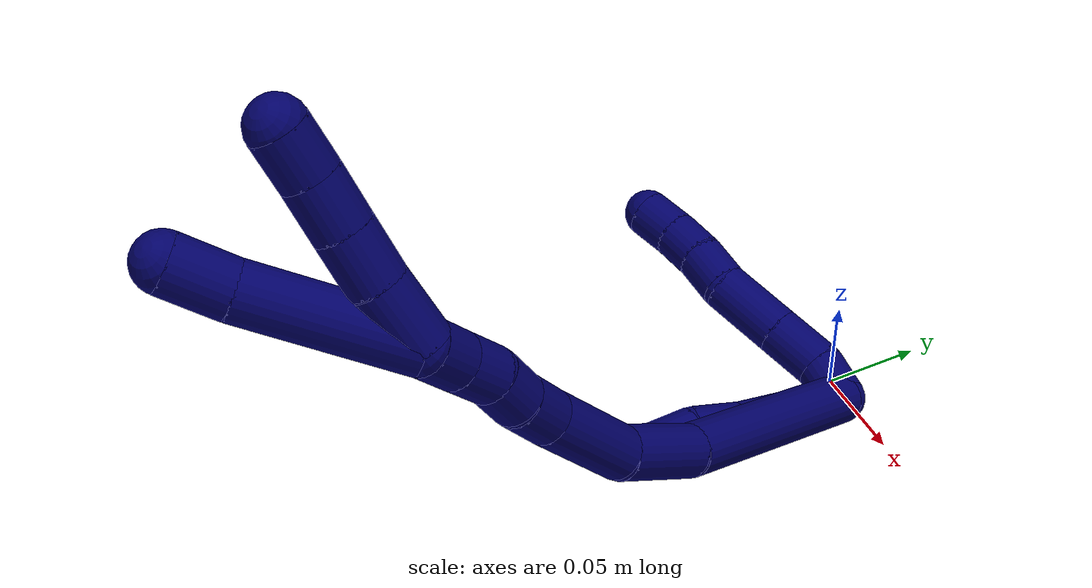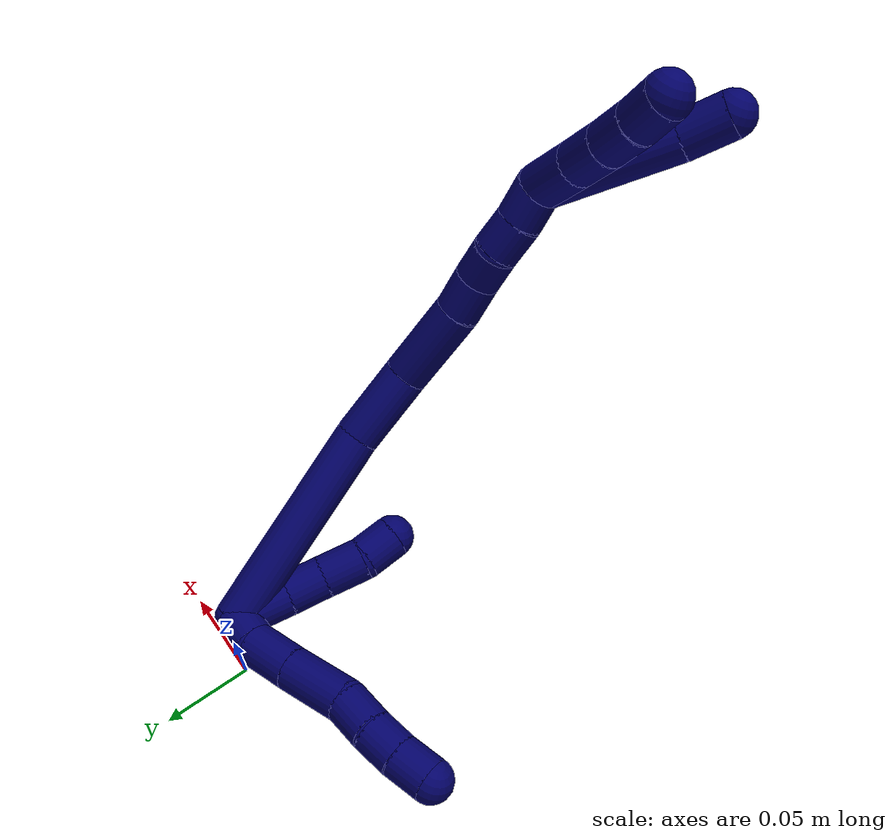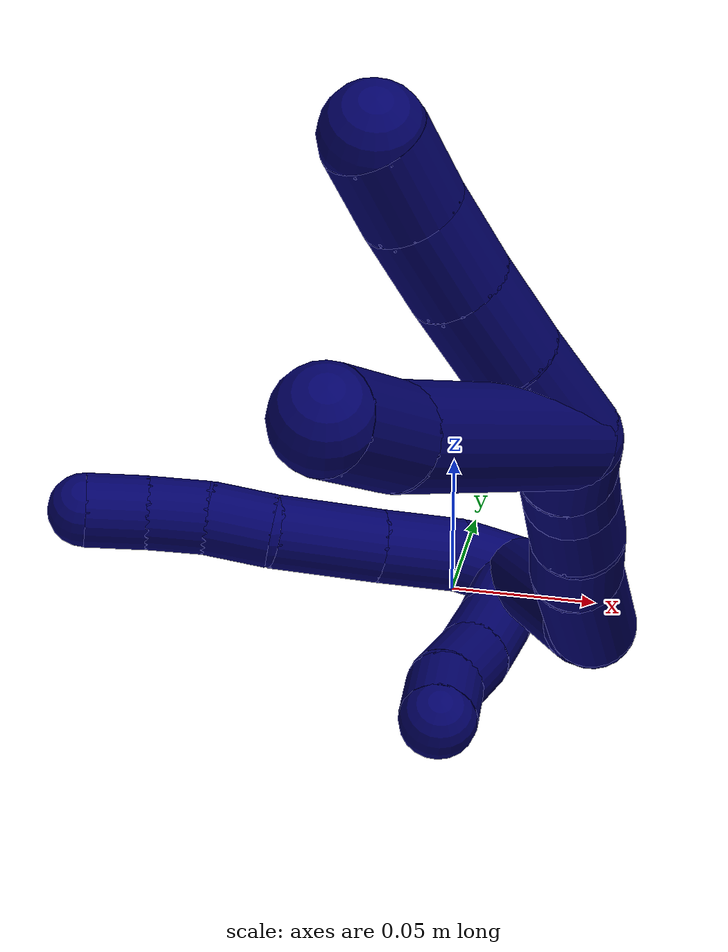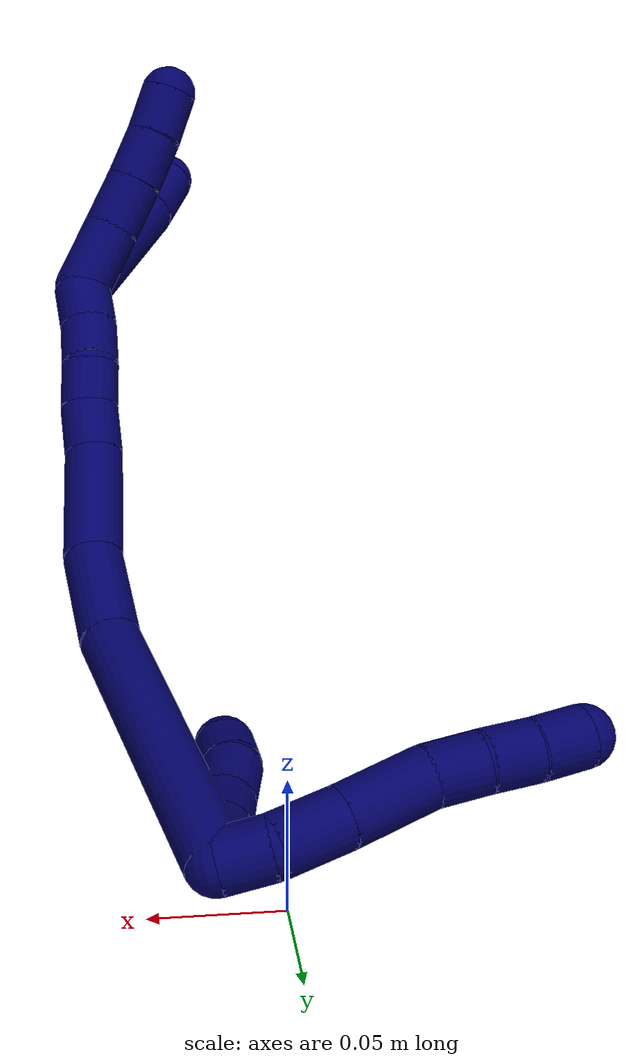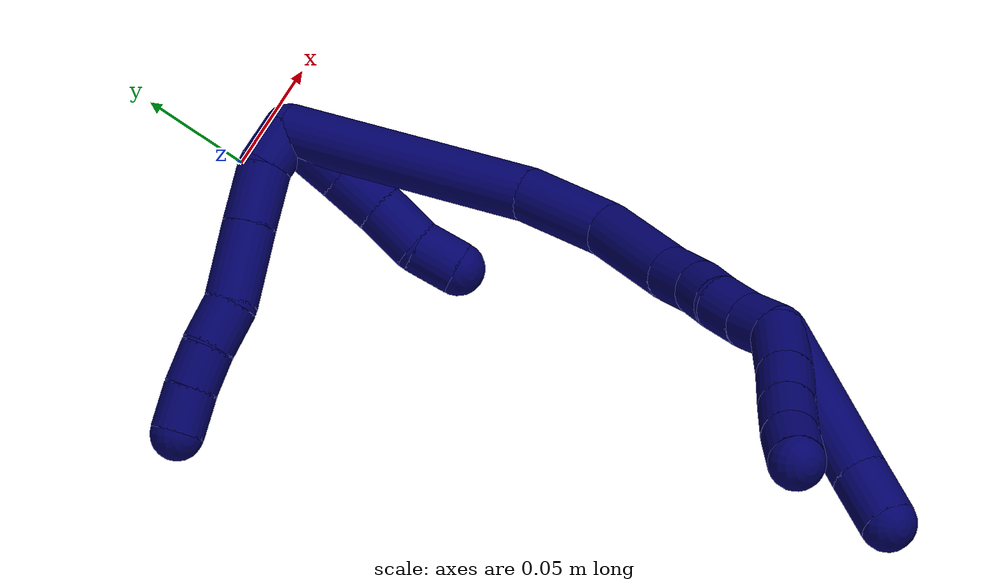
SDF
<sdf version="1.7">
 <world name="default">
  <model name="7">
   <static>0</static>
   <link name="7">
    <collision name="collision-cylinder-e_1_2_8">
     <pose>-0.008521 0.005864 0.00054 -1.47896 -0.966099 0.89245</pose>
     <geometry><cylinder><radius>0.0125</radius><length>0.020715</length></cylinder></geometry>
     <surface>
      <friction><ode><mu>1.16</mu><mu2>1.16</mu2><slip1>0</slip1><slip2>0</slip2></ode></friction>
      <contact><ode><kp>1e+06</kp><kd>1</kd><max_vel>0</max_vel><min_depth>0.001</min_depth></ode></contact>
     </surface>
    </collision>
    <visual name="visual-cylinder-e_1_2_8">
     <pose>-0.008521 0.005864 0.00054 -1.47896 -0.966099 0.89245</pose>
     <geometry><cylinder><radius>0.0125</radius><length>0.020715</length></cylinder></geometry>
     <material><ambient>0.003922 0 0.403922 1</ambient></material>
    </visual>
    <collision name="collision-cylinder-e_2_8_9">
     <pose>-0.030372 0.01589 0.003833 -0.986514 -1.21253 0.713585</pose>
     <geometry><cylinder><radius>0.0125</radius><length>0.028468</length></cylinder></geometry>
     <surface>
      <friction><ode><mu>1.16</mu><mu2>1.16</mu2><slip1>0</slip1><slip2>0</slip2></ode></friction>
      <contact><ode><kp>1e+06</kp><kd>1</kd><max_vel>0</max_vel><min_depth>0.001</min_depth></ode></contact>
     </surface>
    </collision>
    <visual name="visual-cylinder-e_2_8_9">
     <pose>-0.030372 0.01589 0.003833 -0.986514 -1.21253 0.713585</pose>
     <geometry><cylinder><radius>0.0125</radius><length>0.028468</length></cylinder></geometry>
     <material><ambient>0.003922 0 0.403922 1</ambient></material>
    </visual>
    <collision name="collision-cylinder-e_3_9_10">
     <pose>-0.061037 0.025421 0.010991 -0.883624 -1.18981 0.619532</pose>
     <geometry><cylinder><radius>0.0125</radius><length>0.037347</length></cylinder></geometry>
     <surface>
      <friction><ode><mu>1.16</mu><mu2>1.16</mu2><slip1>0</slip1><slip2>0</slip2></ode></friction>
      <contact><ode><kp>1e+06</kp><kd>1</kd><max_vel>0</max_vel><min_depth>0.001</min_depth></ode></contact>
     </surface>
    </collision>
    <visual name="visual-cylinder-e_3_9_10">
     <pose>-0.061037 0.025421 0.010991 -0.883624 -1.18981 0.619532</pose>
     <geometry><cylinder><radius>0.0125</radius><length>0.037347</length></cylinder></geometry>
     <material><ambient>0.003922 0 0.403922 1</ambient></material>
    </visual>
    <collision name="collision-cylinder-e_4_10_11">
     <pose>-0.088141 0.035969 0.016019 -1.45094 -1.08024 0.977397</pose>
     <geometry><cylinder><radius>0.0125</radius><length>0.02215</length></cylinder></geometry>
     <surface>
      <friction><ode><mu>1.16</mu><mu2>1.16</mu2><slip1>0</slip1><slip2>0</slip2></ode></friction>
      <contact><ode><kp>1e+06</kp><kd>1</kd><max_vel>0</max_vel><min_depth>0.001</min_depth></ode></contact>
     </surface>
    </collision>
    <visual name="visual-cylinder-e_4_10_11">
     <pose>-0.088141 0.035969 0.016019 -1.45094 -1.08024 0.977397</pose>
     <geometry><cylinder><radius>0.0125</radius><length>0.02215</length></cylinder></geometry>
     <material><ambient>0.003922 0 0.403922 1</ambient></material>
    </visual>
    <collision name="collision-cylinder-e_5_11_12">
     <pose>-0.107355 0.04474 0.01693 -1.49107 -1.2064 1.13295</pose>
     <geometry><cylinder><radius>0.0125</radius><length>0.020218</length></cylinder></geometry>
     <surface>
      <friction><ode><mu>1.16</mu><mu2>1.16</mu2><slip1>0</slip1><slip2>0</slip2></ode></friction>
      <contact><ode><kp>1e+06</kp><kd>1</kd><max_vel>0</max_vel><min_depth>0.001</min_depth></ode></contact>
     </surface>
    </collision>
    <visual name="visual-cylinder-e_5_11_12">
     <pose>-0.107355 0.04474 0.01693 -1.49107 -1.2064 1.13295</pose>
     <geometry><cylinder><radius>0.0125</radius><length>0.020218</length></cylinder></geometry>
     <material><ambient>0.003922 0 0.403922 1</ambient></material>
    </visual>
    <collision name="collision-cylinder-e_6_12_6">
     <pose>-0.126883 0.051307 0.018108 -1.27981 -1.27202 1.00511</pose>
     <geometry><cylinder><radius>0.0125</radius><length>0.021102</length></cylinder></geometry>
     <surface>
      <friction><ode><mu>1.16</mu><mu2>1.16</mu2><slip1>0</slip1><slip2>0</slip2></ode></friction>
      <contact><ode><kp>1e+06</kp><kd>1</kd><max_vel>0</max_vel><min_depth>0.001</min_depth></ode></contact>
     </surface>
    </collision>
    <visual name="visual-cylinder-e_6_12_6">
     <pose>-0.126883 0.051307 0.018108 -1.27981 -1.27202 1.00511</pose>
     <geometry><cylinder><radius>0.0125</radius><length>0.021102</length></cylinder></geometry>
     <material><ambient>0.003922 0 0.403922 1</ambient></material>
    </visual>
    <collision name="collision-cylinder-e_1_2_13">
     <pose>-0.008937 -0.010971 0.006171 1.05844 -0.617403 -0.368788</pose>
     <geometry><cylinder><radius>0.0125</radius><length>0.030875</length></cylinder></geometry>
     <surface>
      <friction><ode><mu>1.16</mu><mu2>1.16</mu2><slip1>0</slip1><slip2>0</slip2></ode></friction>
      <contact><ode><kp>1e+06</kp><kd>1</kd><max_vel>0</max_vel><min_depth>0.001</min_depth></ode></contact>
     </surface>
    </collision>
    <visual name="visual-cylinder-e_1_2_13">
     <pose>-0.008937 -0.010971 0.006171 1.05844 -0.617403 -0.368788</pose>
     <geometry><cylinder><radius>0.0125</radius><length>0.030875</length></cylinder></geometry>
     <material><ambient>0.003922 0 0.403922 1</ambient></material>
    </visual>
    <collision name="collision-cylinder-e_2_13_14">
     <pose>-0.02464 -0.029504 0.018001 0.928319 -0.621605 -0.318894</pose>
     <geometry><cylinder><radius>0.0125</radius><length>0.023236</length></cylinder></geometry>
     <surface>
      <friction><ode><mu>1.16</mu><mu2>1.16</mu2><slip1>0</slip1><slip2>0</slip2></ode></friction>
      <contact><ode><kp>1e+06</kp><kd>1</kd><max_vel>0</max_vel><min_depth>0.001</min_depth></ode></contact>
     </surface>
    </collision>
    <visual name="visual-cylinder-e_2_13_14">
     <pose>-0.02464 -0.029504 0.018001 0.928319 -0.621605 -0.318894</pose>
     <geometry><cylinder><radius>0.0125</radius><length>0.023236</length></cylinder></geometry>
     <material><ambient>0.003922 0 0.403922 1</ambient></material>
    </visual>
    <collision name="collision-cylinder-e_3_14_15">
     <pose>-0.039003 -0.04396 0.030734 0.772499 -0.655642 -0.274872</pose>
     <geometry><cylinder><radius>0.0125</radius><length>0.024924</length></cylinder></geometry>
     <surface>
      <friction><ode><mu>1.16</mu><mu2>1.16</mu2><slip1>0</slip1><slip2>0</slip2></ode></friction>
      <contact><ode><kp>1e+06</kp><kd>1</kd><max_vel>0</max_vel><min_depth>0.001</min_depth></ode></contact>
     </surface>
    </collision>
    <visual name="visual-cylinder-e_3_14_15">
     <pose>-0.039003 -0.04396 0.030734 0.772499 -0.655642 -0.274872</pose>
     <geometry><cylinder><radius>0.0125</radius><length>0.024924</length></cylinder></geometry>
     <material><ambient>0.003922 0 0.403922 1</ambient></material>
    </visual>
    <collision name="collision-cylinder-e_4_15_5">
     <pose>-0.050839 -0.058662 0.043372 0.951668 -0.416269 -0.216814</pose>
     <geometry><cylinder><radius>0.0125</radius><length>0.020965</length></cylinder></geometry>
     <surface>
      <friction><ode><mu>1.16</mu><mu2>1.16</mu2><slip1>0</slip1><slip2>0</slip2></ode></friction>
      <contact><ode><kp>1e+06</kp><kd>1</kd><max_vel>0</max_vel><min_depth>0.001</min_depth></ode></contact>
     </surface>
    </collision>
    <visual name="visual-cylinder-e_4_15_5">
     <pose>-0.050839 -0.058662 0.043372 0.951668 -0.416269 -0.216814</pose>
     <geometry><cylinder><radius>0.0125</radius><length>0.020965</length></cylinder></geometry>
     <material><ambient>0.003922 0 0.403922 1</ambient></material>
    </visual>
    <collision name="collision-cylinder-e_1_2_16">
     <pose>-0.007189 -0.035569 0.049157 0.626368 -0.117934 -0.038231</pose>
     <geometry><cylinder><radius>0.0125</radius><length>0.122201</length></cylinder></geometry>
     <surface>
      <friction><ode><mu>1.16</mu><mu2>1.16</mu2><slip1>0</slip1><slip2>0</slip2></ode></friction>
      <contact><ode><kp>1e+06</kp><kd>1</kd><max_vel>0</max_vel><min_depth>0.001</min_depth></ode></contact>
     </surface>
    </collision>
    <visual name="visual-cylinder-e_1_2_16">
     <pose>-0.007189 -0.035569 0.049157 0.626368 -0.117934 -0.038231</pose>
     <geometry><cylinder><radius>0.0125</radius><length>0.122201</length></cylinder></geometry>
     <material><ambient>0.003922 0 0.403922 1</ambient></material>
    </visual>
    <collision name="collision-cylinder-e_2_16_17">
     <pose>-0.019332 -0.080786 0.118149 0.452743 -0.220922 -0.051079</pose>
     <geometry><cylinder><radius>0.0125</radius><length>0.045212</length></cylinder></geometry>
     <surface>
      <friction><ode><mu>1.16</mu><mu2>1.16</mu2><slip1>0</slip1><slip2>0</slip2></ode></friction>
      <contact><ode><kp>1e+06</kp><kd>1</kd><max_vel>0</max_vel><min_depth>0.001</min_depth></ode></contact>
     </surface>
    </collision>
    <visual name="visual-cylinder-e_2_16_17">
     <pose>-0.019332 -0.080786 0.118149 0.452743 -0.220922 -0.051079</pose>
     <geometry><cylinder><radius>0.0125</radius><length>0.045212</length></cylinder></geometry>
     <material><ambient>0.003922 0 0.403922 1</ambient></material>
    </visual>
    <collision name="collision-cylinder-e_3_17_18">
     <pose>-0.030611 -0.093115 0.161768 0.112259 -0.258391 -0.0146</pose>
     <geometry><cylinder><radius>0.0125</radius><length>0.049512</length></cylinder></geometry>
     <surface>
      <friction><ode><mu>1.16</mu><mu2>1.16</mu2><slip1>0</slip1><slip2>0</slip2></ode></friction>
      <contact><ode><kp>1e+06</kp><kd>1</kd><max_vel>0</max_vel><min_depth>0.001</min_depth></ode></contact>
     </surface>
    </collision>
    <visual name="visual-cylinder-e_3_17_18">
     <pose>-0.030611 -0.093115 0.161768 0.112259 -0.258391 -0.0146</pose>
     <geometry><cylinder><radius>0.0125</radius><length>0.049512</length></cylinder></geometry>
     <material><ambient>0.003922 0 0.403922 1</ambient></material>
    </visual>
    <collision name="collision-cylinder-e_4_18_19">
     <pose>-0.038454 -0.096688 0.196555 0.080834 -0.136574 -0.005531</pose>
     <geometry><cylinder><radius>0.0125</radius><length>0.022286</length></cylinder></geometry>
     <surface>
      <friction><ode><mu>1.16</mu><mu2>1.16</mu2><slip1>0</slip1><slip2>0</slip2></ode></friction>
      <contact><ode><kp>1e+06</kp><kd>1</kd><max_vel>0</max_vel><min_depth>0.001</min_depth></ode></contact>
     </surface>
    </collision>
    <visual name="visual-cylinder-e_4_18_19">
     <pose>-0.038454 -0.096688 0.196555 0.080834 -0.136574 -0.005531</pose>
     <geometry><cylinder><radius>0.0125</radius><length>0.022286</length></cylinder></geometry>
     <material><ambient>0.003922 0 0.403922 1</ambient></material>
    </visual>
    <collision name="collision-cylinder-e_5_19_20">
     <pose>-0.041799 -0.096837 0.217369 -0.0755 -0.183595 0.006954</pose>
     <geometry><cylinder><radius>0.0125</radius><length>0.020015</length></cylinder></geometry>
     <surface>
      <friction><ode><mu>1.16</mu><mu2>1.16</mu2><slip1>0</slip1><slip2>0</slip2></ode></friction>
      <contact><ode><kp>1e+06</kp><kd>1</kd><max_vel>0</max_vel><min_depth>0.001</min_depth></ode></contact>
     </surface>
    </collision>
    <visual name="visual-cylinder-e_5_19_20">
     <pose>-0.041799 -0.096837 0.217369 -0.0755 -0.183595 0.006954</pose>
     <geometry><cylinder><radius>0.0125</radius><length>0.020015</length></cylinder></geometry>
     <material><ambient>0.003922 0 0.403922 1</ambient></material>
    </visual>
    <collision name="collision-cylinder-e_6_20_21">
     <pose>-0.045965 -0.097678 0.236934 0.16087 -0.232441 -0.018821</pose>
     <geometry><cylinder><radius>0.0125</radius><length>0.020308</length></cylinder></geometry>
     <surface>
      <friction><ode><mu>1.16</mu><mu2>1.16</mu2><slip1>0</slip1><slip2>0</slip2></ode></friction>
      <contact><ode><kp>1e+06</kp><kd>1</kd><max_vel>0</max_vel><min_depth>0.001</min_depth></ode></contact>
     </surface>
    </collision>
    <visual name="visual-cylinder-e_6_20_21">
     <pose>-0.045965 -0.097678 0.236934 0.16087 -0.232441 -0.018821</pose>
     <geometry><cylinder><radius>0.0125</radius><length>0.020308</length></cylinder></geometry>
     <material><ambient>0.003922 0 0.403922 1</ambient></material>
    </visual>
    <collision name="collision-cylinder-e_7_21_1">
     <pose>-0.049492 -0.100818 0.25673 0.153912 -0.11644 -0.008989</pose>
     <geometry><cylinder><radius>0.0125</radius><length>0.020465</length></cylinder></geometry>
     <surface>
      <friction><ode><mu>1.16</mu><mu2>1.16</mu2><slip1>0</slip1><slip2>0</slip2></ode></friction>
      <contact><ode><kp>1e+06</kp><kd>1</kd><max_vel>0</max_vel><min_depth>0.001</min_depth></ode></contact>
     </surface>
    </collision>
    <visual name="visual-cylinder-e_7_21_1">
     <pose>-0.049492 -0.100818 0.25673 0.153912 -0.11644 -0.008989</pose>
     <geometry><cylinder><radius>0.0125</radius><length>0.020465</length></cylinder></geometry>
     <material><ambient>0.003922 0 0.403922 1</ambient></material>
    </visual>
    <collision name="collision-cylinder-e_1_1_22">
     <pose>-0.07707 -0.110395 0.290997 0.31966 -0.802223 -0.136523</pose>
     <geometry><cylinder><radius>0.0125</radius><length>0.073415</length></cylinder></geometry>
     <surface>
      <friction><ode><mu>1.16</mu><mu2>1.16</mu2><slip1>0</slip1><slip2>0</slip2></ode></friction>
      <contact><ode><kp>1e+06</kp><kd>1</kd><max_vel>0</max_vel><min_depth>0.001</min_depth></ode></contact>
     </surface>
    </collision>
    <visual name="visual-cylinder-e_1_1_22">
     <pose>-0.07707 -0.110395 0.290997 0.31966 -0.802223 -0.136523</pose>
     <geometry><cylinder><radius>0.0125</radius><length>0.073415</length></cylinder></geometry>
     <material><ambient>0.003922 0 0.403922 1</ambient></material>
    </visual>
    <collision name="collision-cylinder-e_2_22_4">
     <pose>-0.112142 -0.120223 0.325121 0.180801 -0.711777 -0.067365</pose>
     <geometry><cylinder><radius>0.0125</radius><length>0.026585</length></cylinder></geometry>
     <surface>
      <friction><ode><mu>1.16</mu><mu2>1.16</mu2><slip1>0</slip1><slip2>0</slip2></ode></friction>
      <contact><ode><kp>1e+06</kp><kd>1</kd><max_vel>0</max_vel><min_depth>0.001</min_depth></ode></contact>
     </surface>
    </collision>
    <visual name="visual-cylinder-e_2_22_4">
     <pose>-0.112142 -0.120223 0.325121 0.180801 -0.711777 -0.067365</pose>
     <geometry><cylinder><radius>0.0125</radius><length>0.026585</length></cylinder></geometry>
     <material><ambient>0.003922 0 0.403922 1</ambient></material>
    </visual>
    <collision name="collision-cylinder-e_1_1_23">
     <pose>-0.057697 -0.097007 0.27911 -0.410529 -0.480699 0.101964</pose>
     <geometry><cylinder><radius>0.0125</radius><length>0.030348</length></cylinder></geometry>
     <surface>
      <friction><ode><mu>1.16</mu><mu2>1.16</mu2><slip1>0</slip1><slip2>0</slip2></ode></friction>
      <contact><ode><kp>1e+06</kp><kd>1</kd><max_vel>0</max_vel><min_depth>0.001</min_depth></ode></contact>
     </surface>
    </collision>
    <visual name="visual-cylinder-e_1_1_23">
     <pose>-0.057697 -0.097007 0.27911 -0.410529 -0.480699 0.101964</pose>
     <geometry><cylinder><radius>0.0125</radius><length>0.030348</length></cylinder></geometry>
     <material><ambient>0.003922 0 0.403922 1</ambient></material>
    </visual>
    <collision name="collision-cylinder-e_2_23_24">
     <pose>-0.07 -0.086603 0.301212 -0.47602 -0.448426 0.11054</pose>
     <geometry><cylinder><radius>0.0125</radius><length>0.024386</length></cylinder></geometry>
     <surface>
      <friction><ode><mu>1.16</mu><mu2>1.16</mu2><slip1>0</slip1><slip2>0</slip2></ode></friction>
      <contact><ode><kp>1e+06</kp><kd>1</kd><max_vel>0</max_vel><min_depth>0.001</min_depth></ode></contact>
     </surface>
    </collision>
    <visual name="visual-cylinder-e_2_23_24">
     <pose>-0.07 -0.086603 0.301212 -0.47602 -0.448426 0.11054</pose>
     <geometry><cylinder><radius>0.0125</radius><length>0.024386</length></cylinder></geometry>
     <material><ambient>0.003922 0 0.403922 1</ambient></material>
    </visual>
    <collision name="collision-cylinder-e_3_24_25">
     <pose>-0.079949 -0.076851 0.320571 -0.45696 -0.411291 0.096937</pose>
     <geometry><cylinder><radius>0.0125</radius><length>0.023325</length></cylinder></geometry>
     <surface>
      <friction><ode><mu>1.16</mu><mu2>1.16</mu2><slip1>0</slip1><slip2>0</slip2></ode></friction>
      <contact><ode><kp>1e+06</kp><kd>1</kd><max_vel>0</max_vel><min_depth>0.001</min_depth></ode></contact>
     </surface>
    </collision>
    <visual name="visual-cylinder-e_3_24_25">
     <pose>-0.079949 -0.076851 0.320571 -0.45696 -0.411291 0.096937</pose>
     <geometry><cylinder><radius>0.0125</radius><length>0.023325</length></cylinder></geometry>
     <material><ambient>0.003922 0 0.403922 1</ambient></material>
    </visual>
    <collision name="collision-cylinder-e_4_25_3">
     <pose>-0.088458 -0.06822 0.339663 -0.390882 -0.358261 0.071662</pose>
     <geometry><cylinder><radius>0.0125</radius><length>0.021941</length></cylinder></geometry>
     <surface>
      <friction><ode><mu>1.16</mu><mu2>1.16</mu2><slip1>0</slip1><slip2>0</slip2></ode></friction>
      <contact><ode><kp>1e+06</kp><kd>1</kd><max_vel>0</max_vel><min_depth>0.001</min_depth></ode></contact>
     </surface>
    </collision>
    <visual name="visual-cylinder-e_4_25_3">
     <pose>-0.088458 -0.06822 0.339663 -0.390882 -0.358261 0.071662</pose>
     <geometry><cylinder><radius>0.0125</radius><length>0.021941</length></cylinder></geometry>
     <material><ambient>0.003922 0 0.403922 1</ambient></material>
    </visual>
    <collision name="collision-sphere-3">
     <pose>-0.092305 -0.064305 0.349163 0 -0 0</pose>
     <geometry><sphere><radius>0.0125</radius></sphere></geometry>
     <surface>
      <friction><ode><mu>1.16</mu><mu2>1.16</mu2><slip1>0</slip1><slip2>0</slip2></ode></friction>
      <contact><ode><kp>1e+06</kp><kd>1</kd><max_vel>0</max_vel><min_depth>0.001</min_depth></ode></contact>
     </surface>
    </collision>
    <visual name="visual-sphere-3">
     <pose>-0.092305 -0.064305 0.349163 0 -0 0</pose>
     <geometry><sphere><radius>0.0125</radius></sphere></geometry>
     <material><ambient>0.003922 0 0.403922 1</ambient></material>
    </visual>
    <collision name="collision-sphere-25">
     <pose>-0.084611 -0.072134 0.330164 0 -0 0</pose>
     <geometry><sphere><radius>0.0125</radius></sphere></geometry>
     <surface>
      <friction><ode><mu>1.16</mu><mu2>1.16</mu2><slip1>0</slip1><slip2>0</slip2></ode></friction>
      <contact><ode><kp>1e+06</kp><kd>1</kd><max_vel>0</max_vel><min_depth>0.001</min_depth></ode></contact>
     </surface>
    </collision>
    <visual name="visual-sphere-25">
     <pose>-0.084611 -0.072134 0.330164 0 -0 0</pose>
     <geometry><sphere><radius>0.0125</radius></sphere></geometry>
     <material><ambient>0.003922 0 0.403922 1</ambient></material>
    </visual>
    <collision name="collision-sphere-24">
     <pose>-0.075286 -0.081568 0.310978 0 -0 0</pose>
     <geometry><sphere><radius>0.0125</radius></sphere></geometry>
     <surface>
      <friction><ode><mu>1.16</mu><mu2>1.16</mu2><slip1>0</slip1><slip2>0</slip2></ode></friction>
      <contact><ode><kp>1e+06</kp><kd>1</kd><max_vel>0</max_vel><min_depth>0.001</min_depth></ode></contact>
     </surface>
    </collision>
    <visual name="visual-sphere-24">
     <pose>-0.075286 -0.081568 0.310978 0 -0 0</pose>
     <geometry><sphere><radius>0.0125</radius></sphere></geometry>
     <material><ambient>0.003922 0 0.403922 1</ambient></material>
    </visual>
    <collision name="collision-sphere-23">
     <pose>-0.064714 -0.091638 0.291446 0 -0 0</pose>
     <geometry><sphere><radius>0.0125</radius></sphere></geometry>
     <surface>
      <friction><ode><mu>1.16</mu><mu2>1.16</mu2><slip1>0</slip1><slip2>0</slip2></ode></friction>
      <contact><ode><kp>1e+06</kp><kd>1</kd><max_vel>0</max_vel><min_depth>0.001</min_depth></ode></contact>
     </surface>
    </collision>
    <visual name="visual-sphere-23">
     <pose>-0.064714 -0.091638 0.291446 0 -0 0</pose>
     <geometry><sphere><radius>0.0125</radius></sphere></geometry>
     <material><ambient>0.003922 0 0.403922 1</ambient></material>
    </visual>
    <collision name="collision-sphere-4">
     <pose>-0.120824 -0.122033 0.335022 0 -0 0</pose>
     <geometry><sphere><radius>0.0125</radius></sphere></geometry>
     <surface>
      <friction><ode><mu>1.16</mu><mu2>1.16</mu2><slip1>0</slip1><slip2>0</slip2></ode></friction>
      <contact><ode><kp>1e+06</kp><kd>1</kd><max_vel>0</max_vel><min_depth>0.001</min_depth></ode></contact>
     </surface>
    </collision>
    <visual name="visual-sphere-4">
     <pose>-0.120824 -0.122033 0.335022 0 -0 0</pose>
     <geometry><sphere><radius>0.0125</radius></sphere></geometry>
     <material><ambient>0.003922 0 0.403922 1</ambient></material>
    </visual>
    <collision name="collision-sphere-22">
     <pose>-0.10346 -0.118413 0.31522 0 -0 0</pose>
     <geometry><sphere><radius>0.0125</radius></sphere></geometry>
     <surface>
      <friction><ode><mu>1.16</mu><mu2>1.16</mu2><slip1>0</slip1><slip2>0</slip2></ode></friction>
      <contact><ode><kp>1e+06</kp><kd>1</kd><max_vel>0</max_vel><min_depth>0.001</min_depth></ode></contact>
     </surface>
    </collision>
    <visual name="visual-sphere-22">
     <pose>-0.10346 -0.118413 0.31522 0 -0 0</pose>
     <geometry><sphere><radius>0.0125</radius></sphere></geometry>
     <material><ambient>0.003922 0 0.403922 1</ambient></material>
    </visual>
    <collision name="collision-sphere-1">
     <pose>-0.050681 -0.102376 0.266773 0 -0 0</pose>
     <geometry><sphere><radius>0.0125</radius></sphere></geometry>
     <surface>
      <friction><ode><mu>1.16</mu><mu2>1.16</mu2><slip1>0</slip1><slip2>0</slip2></ode></friction>
      <contact><ode><kp>1e+06</kp><kd>1</kd><max_vel>0</max_vel><min_depth>0.001</min_depth></ode></contact>
     </surface>
    </collision>
    <visual name="visual-sphere-1">
     <pose>-0.050681 -0.102376 0.266773 0 -0 0</pose>
     <geometry><sphere><radius>0.0125</radius></sphere></geometry>
     <material><ambient>0.003922 0 0.403922 1</ambient></material>
    </visual>
    <collision name="collision-sphere-21">
     <pose>-0.048304 -0.09926 0.246687 0 -0 0</pose>
     <geometry><sphere><radius>0.0125</radius></sphere></geometry>
     <surface>
      <friction><ode><mu>1.16</mu><mu2>1.16</mu2><slip1>0</slip1><slip2>0</slip2></ode></friction>
      <contact><ode><kp>1e+06</kp><kd>1</kd><max_vel>0</max_vel><min_depth>0.001</min_depth></ode></contact>
     </surface>
    </collision>
    <visual name="visual-sphere-21">
     <pose>-0.048304 -0.09926 0.246687 0 -0 0</pose>
     <geometry><sphere><radius>0.0125</radius></sphere></geometry>
     <material><ambient>0.003922 0 0.403922 1</ambient></material>
    </visual>
    <collision name="collision-sphere-12">
     <pose>-0.1168 0.048331 0.017217 0 -0 0</pose>
     <geometry><sphere><radius>0.0125</radius></sphere></geometry>
     <surface>
      <friction><ode><mu>1.16</mu><mu2>1.16</mu2><slip1>0</slip1><slip2>0</slip2></ode></friction>
      <contact><ode><kp>1e+06</kp><kd>1</kd><max_vel>0</max_vel><min_depth>0.001</min_depth></ode></contact>
     </surface>
    </collision>
    <visual name="visual-sphere-12">
     <pose>-0.1168 0.048331 0.017217 0 -0 0</pose>
     <geometry><sphere><radius>0.0125</radius></sphere></geometry>
     <material><ambient>0.003922 0 0.403922 1</ambient></material>
    </visual>
    <collision name="collision-sphere-11">
     <pose>-0.097909 0.041149 0.016643 0 -0 0</pose>
     <geometry><sphere><radius>0.0125</radius></sphere></geometry>
     <surface>
      <friction><ode><mu>1.16</mu><mu2>1.16</mu2><slip1>0</slip1><slip2>0</slip2></ode></friction>
      <contact><ode><kp>1e+06</kp><kd>1</kd><max_vel>0</max_vel><min_depth>0.001</min_depth></ode></contact>
     </surface>
    </collision>
    <visual name="visual-sphere-11">
     <pose>-0.097909 0.041149 0.016643 0 -0 0</pose>
     <geometry><sphere><radius>0.0125</radius></sphere></geometry>
     <material><ambient>0.003922 0 0.403922 1</ambient></material>
    </visual>
    <collision name="collision-sphere-10">
     <pose>-0.078372 0.030789 0.015395 0 -0 0</pose>
     <geometry><sphere><radius>0.0125</radius></sphere></geometry>
     <surface>
      <friction><ode><mu>1.16</mu><mu2>1.16</mu2><slip1>0</slip1><slip2>0</slip2></ode></friction>
      <contact><ode><kp>1e+06</kp><kd>1</kd><max_vel>0</max_vel><min_depth>0.001</min_depth></ode></contact>
     </surface>
    </collision>
    <visual name="visual-sphere-10">
     <pose>-0.078372 0.030789 0.015395 0 -0 0</pose>
     <geometry><sphere><radius>0.0125</radius></sphere></geometry>
     <material><ambient>0.003922 0 0.403922 1</ambient></material>
    </visual>
    <collision name="collision-sphere-9">
     <pose>-0.043702 0.020053 0.006586 0 -0 0</pose>
     <geometry><sphere><radius>0.0125</radius></sphere></geometry>
     <surface>
      <friction><ode><mu>1.16</mu><mu2>1.16</mu2><slip1>0</slip1><slip2>0</slip2></ode></friction>
      <contact><ode><kp>1e+06</kp><kd>1</kd><max_vel>0</max_vel><min_depth>0.001</min_depth></ode></contact>
     </surface>
    </collision>
    <visual name="visual-sphere-9">
     <pose>-0.043702 0.020053 0.006586 0 -0 0</pose>
     <geometry><sphere><radius>0.0125</radius></sphere></geometry>
     <material><ambient>0.003922 0 0.403922 1</ambient></material>
    </visual>
    <collision name="collision-sphere-2">
     <geometry><sphere><radius>0.0125</radius></sphere></geometry>
     <surface>
      <friction><ode><mu>1.16</mu><mu2>1.16</mu2><slip1>0</slip1><slip2>0</slip2></ode></friction>
      <contact><ode><kp>1e+06</kp><kd>1</kd><max_vel>0</max_vel><min_depth>0.001</min_depth></ode></contact>
     </surface>
    </collision>
    <visual name="visual-sphere-2">
     <geometry><sphere><radius>0.0125</radius></sphere></geometry>
     <material><ambient>0.003922 0 0.403922 1</ambient></material>
    </visual>
    <collision name="collision-sphere-19">
     <pose>-0.039972 -0.097579 0.207558 0 -0 0</pose>
     <geometry><sphere><radius>0.0125</radius></sphere></geometry>
     <surface>
      <friction><ode><mu>1.16</mu><mu2>1.16</mu2><slip1>0</slip1><slip2>0</slip2></ode></friction>
      <contact><ode><kp>1e+06</kp><kd>1</kd><max_vel>0</max_vel><min_depth>0.001</min_depth></ode></contact>
     </surface>
    </collision>
    <visual name="visual-sphere-19">
     <pose>-0.039972 -0.097579 0.207558 0 -0 0</pose>
     <geometry><sphere><radius>0.0125</radius></sphere></geometry>
     <material><ambient>0.003922 0 0.403922 1</ambient></material>
    </visual>
    <collision name="collision-sphere-8">
     <pose>-0.017042 0.011727 0.00108 0 -0 0</pose>
     <geometry><sphere><radius>0.0125</radius></sphere></geometry>
     <surface>
      <friction><ode><mu>1.16</mu><mu2>1.16</mu2><slip1>0</slip1><slip2>0</slip2></ode></friction>
      <contact><ode><kp>1e+06</kp><kd>1</kd><max_vel>0</max_vel><min_depth>0.001</min_depth></ode></contact>
     </surface>
    </collision>
    <visual name="visual-sphere-8">
     <pose>-0.017042 0.011727 0.00108 0 -0 0</pose>
     <geometry><sphere><radius>0.0125</radius></sphere></geometry>
     <material><ambient>0.003922 0 0.403922 1</ambient></material>
    </visual>
    <collision name="collision-sphere-6">
     <pose>-0.136967 0.054282 0.018999 0 -0 0</pose>
     <geometry><sphere><radius>0.0125</radius></sphere></geometry>
     <surface>
      <friction><ode><mu>1.16</mu><mu2>1.16</mu2><slip1>0</slip1><slip2>0</slip2></ode></friction>
      <contact><ode><kp>1e+06</kp><kd>1</kd><max_vel>0</max_vel><min_depth>0.001</min_depth></ode></contact>
     </surface>
    </collision>
    <visual name="visual-sphere-6">
     <pose>-0.136967 0.054282 0.018999 0 -0 0</pose>
     <geometry><sphere><radius>0.0125</radius></sphere></geometry>
     <material><ambient>0.003922 0 0.403922 1</ambient></material>
    </visual>
    <collision name="collision-sphere-13">
     <pose>-0.017874 -0.021943 0.012342 0 -0 0</pose>
     <geometry><sphere><radius>0.0125</radius></sphere></geometry>
     <surface>
      <friction><ode><mu>1.16</mu><mu2>1.16</mu2><slip1>0</slip1><slip2>0</slip2></ode></friction>
      <contact><ode><kp>1e+06</kp><kd>1</kd><max_vel>0</max_vel><min_depth>0.001</min_depth></ode></contact>
     </surface>
    </collision>
    <visual name="visual-sphere-13">
     <pose>-0.017874 -0.021943 0.012342 0 -0 0</pose>
     <geometry><sphere><radius>0.0125</radius></sphere></geometry>
     <material><ambient>0.003922 0 0.403922 1</ambient></material>
    </visual>
    <collision name="collision-sphere-14">
     <pose>-0.031406 -0.037066 0.02366 0 -0 0</pose>
     <geometry><sphere><radius>0.0125</radius></sphere></geometry>
     <surface>
      <friction><ode><mu>1.16</mu><mu2>1.16</mu2><slip1>0</slip1><slip2>0</slip2></ode></friction>
      <contact><ode><kp>1e+06</kp><kd>1</kd><max_vel>0</max_vel><min_depth>0.001</min_depth></ode></contact>
     </surface>
    </collision>
    <visual name="visual-sphere-14">
     <pose>-0.031406 -0.037066 0.02366 0 -0 0</pose>
     <geometry><sphere><radius>0.0125</radius></sphere></geometry>
     <material><ambient>0.003922 0 0.403922 1</ambient></material>
    </visual>
    <collision name="collision-sphere-15">
     <pose>-0.046601 -0.050854 0.037809 0 -0 0</pose>
     <geometry><sphere><radius>0.0125</radius></sphere></geometry>
     <surface>
      <friction><ode><mu>1.16</mu><mu2>1.16</mu2><slip1>0</slip1><slip2>0</slip2></ode></friction>
      <contact><ode><kp>1e+06</kp><kd>1</kd><max_vel>0</max_vel><min_depth>0.001</min_depth></ode></contact>
     </surface>
    </collision>
    <visual name="visual-sphere-15">
     <pose>-0.046601 -0.050854 0.037809 0 -0 0</pose>
     <geometry><sphere><radius>0.0125</radius></sphere></geometry>
     <material><ambient>0.003922 0 0.403922 1</ambient></material>
    </visual>
    <collision name="collision-sphere-5">
     <pose>-0.055078 -0.06647 0.048936 0 -0 0</pose>
     <geometry><sphere><radius>0.0125</radius></sphere></geometry>
     <surface>
      <friction><ode><mu>1.16</mu><mu2>1.16</mu2><slip1>0</slip1><slip2>0</slip2></ode></friction>
      <contact><ode><kp>1e+06</kp><kd>1</kd><max_vel>0</max_vel><min_depth>0.001</min_depth></ode></contact>
     </surface>
    </collision>
    <visual name="visual-sphere-5">
     <pose>-0.055078 -0.06647 0.048936 0 -0 0</pose>
     <geometry><sphere><radius>0.0125</radius></sphere></geometry>
     <material><ambient>0.003922 0 0.403922 1</ambient></material>
    </visual>
    <collision name="collision-sphere-16">
     <pose>-0.014378 -0.071137 0.098315 0 -0 0</pose>
     <geometry><sphere><radius>0.0125</radius></sphere></geometry>
     <surface>
      <friction><ode><mu>1.16</mu><mu2>1.16</mu2><slip1>0</slip1><slip2>0</slip2></ode></friction>
      <contact><ode><kp>1e+06</kp><kd>1</kd><max_vel>0</max_vel><min_depth>0.001</min_depth></ode></contact>
     </surface>
    </collision>
    <visual name="visual-sphere-16">
     <pose>-0.014378 -0.071137 0.098315 0 -0 0</pose>
     <geometry><sphere><radius>0.0125</radius></sphere></geometry>
     <material><ambient>0.003922 0 0.403922 1</ambient></material>
    </visual>
    <collision name="collision-sphere-17">
     <pose>-0.024286 -0.090434 0.137984 0 -0 0</pose>
     <geometry><sphere><radius>0.0125</radius></sphere></geometry>
     <surface>
      <friction><ode><mu>1.16</mu><mu2>1.16</mu2><slip1>0</slip1><slip2>0</slip2></ode></friction>
      <contact><ode><kp>1e+06</kp><kd>1</kd><max_vel>0</max_vel><min_depth>0.001</min_depth></ode></contact>
     </surface>
    </collision>
    <visual name="visual-sphere-17">
     <pose>-0.024286 -0.090434 0.137984 0 -0 0</pose>
     <geometry><sphere><radius>0.0125</radius></sphere></geometry>
     <material><ambient>0.003922 0 0.403922 1</ambient></material>
    </visual>
    <collision name="collision-sphere-18">
     <pose>-0.036937 -0.095797 0.185551 0 -0 0</pose>
     <geometry><sphere><radius>0.0125</radius></sphere></geometry>
     <surface>
      <friction><ode><mu>1.16</mu><mu2>1.16</mu2><slip1>0</slip1><slip2>0</slip2></ode></friction>
      <contact><ode><kp>1e+06</kp><kd>1</kd><max_vel>0</max_vel><min_depth>0.001</min_depth></ode></contact>
     </surface>
    </collision>
    <visual name="visual-sphere-18">
     <pose>-0.036937 -0.095797 0.185551 0 -0 0</pose>
     <geometry><sphere><radius>0.0125</radius></sphere></geometry>
     <material><ambient>0.003922 0 0.403922 1</ambient></material>
    </visual>
    <collision name="collision-sphere-20">
     <pose>-0.043626 -0.096095 0.227181 0 -0 0</pose>
     <geometry><sphere><radius>0.0125</radius></sphere></geometry>
     <surface>
      <friction><ode><mu>1.16</mu><mu2>1.16</mu2><slip1>0</slip1><slip2>0</slip2></ode></friction>
      <contact><ode><kp>1e+06</kp><kd>1</kd><max_vel>0</max_vel><min_depth>0.001</min_depth></ode></contact>
     </surface>
    </collision>
    <visual name="visual-sphere-20">
     <pose>-0.043626 -0.096095 0.227181 0 -0 0</pose>
     <geometry><sphere><radius>0.0125</radius></sphere></geometry>
     <material><ambient>0.003922 0 0.403922 1</ambient></material>
    </visual>
    <inertial>
     <pose>-0.047758 -0.052584 0.137069 0 -0 0</pose>
     <mass>0.75</mass>
     <inertia>
      <ixx>0.000194</ixx>
      <ixy>0</ixy>
      <ixz>0</ixz>
      <iyy>0.000205</iyy>
      <iyz>0</iyz>
      <izz>0.000216</izz>
     </inertia>
    </inertial>
   </link>
   <pose>0.024398 -0.0108 0.014898 0.526733 -0.118393 0.496642</pose>
  </model>
 </world>
</sdf>
